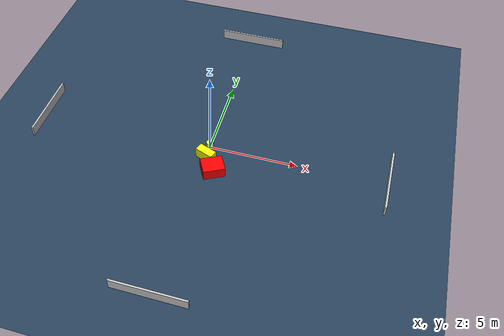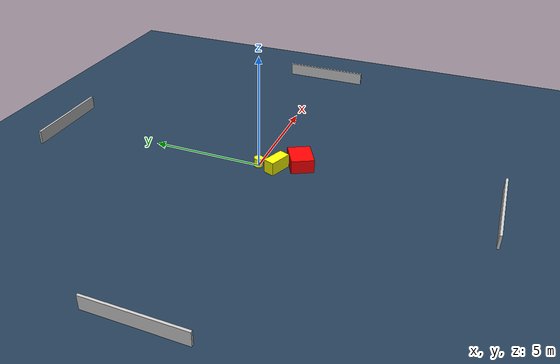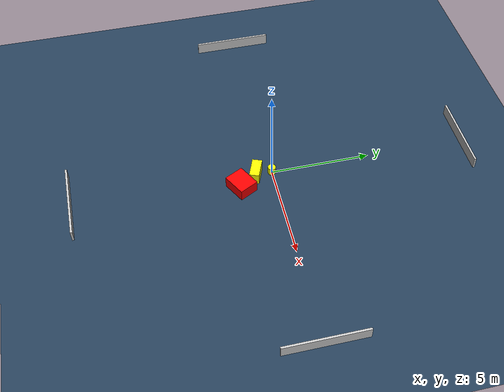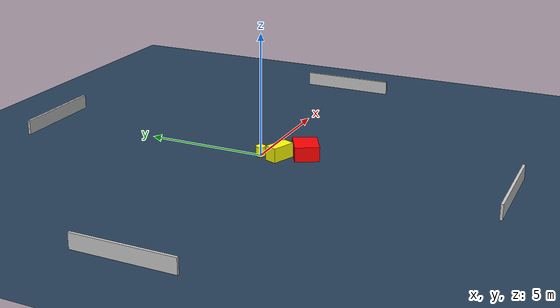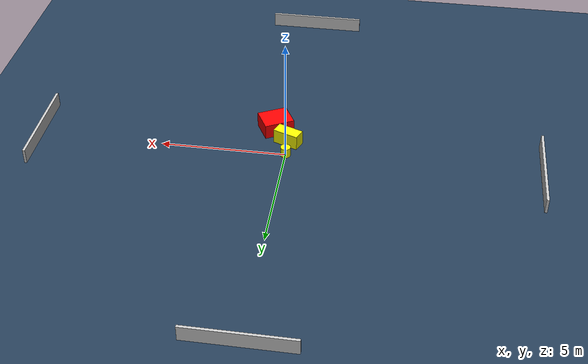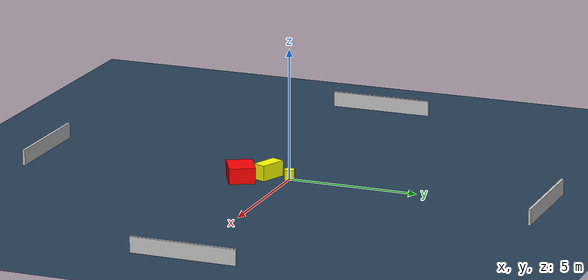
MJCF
<?xml version="1.0" ?>
<mujoco model="generated_environment">
  <option timestep="0.01" integrator="RK4" cone="elliptic"/>
  <default>
    <geom density="1"/>
  </default>
  <asset>
    <texture builtin="gradient" height="3072" name="skybox" rgb1="0.3 0.5 0.7" rgb2="0 0 0" type="skybox" width="512"/>
    <texture builtin="checker" height="300" name="groundplane" rgb1="0.2 0.3 0.4" rgb2="0.1 0.2 0.3" type="2d" width="300"/>
    <material name="groundplane" reflectance="0.2" texrepeat="5 5" texture="groundplane"/>
  </asset>
  <worldbody>
    <light dir="0 0 -1" directional="true" pos="0 0 1.5"/>
    <geom condim="3" friction="0.5 0.005 0.001" material="groundplane" name="floor" pos="0 0 0" size="0 0 0.05" type="plane"/>
    <body name="walls">
      <geom name="wall_1" condim="4" pos="-10.0 0.0 0.3" rgba="0.800000011920929 0.800000011920929 0.800000011920929 1.0" size="0.05 2.0 0.3" type="box"/>
      <geom name="wall_2" condim="4" pos="10.0 0.0 0.3" rgba="0.800000011920929 0.800000011920929 0.800000011920929 1.0" size="0.05 2.0 0.3" type="box"/>
      <geom name="wall_3" condim="4" pos="0.0 -10.0 0.3" rgba="0.800000011920929 0.800000011920929 0.800000011920929 1.0" size="2.0 0.05 0.3" type="box"/>
      <geom name="wall_4" condim="4" pos="0.0 10.0 0.3" rgba="0.800000011920929 0.800000011920929 0.800000011920929 1.0" size="2.0 0.05 0.3" type="box"/>
    </body>
    <body name="robot">
      <joint name="joint_x" type="slide" pos="0 0 0" axis="1 0 0"/>
      <joint name="joint_y" type="slide" pos="0 0 0" axis="0 1 0"/>
      <geom name="robot" type="cylinder" pos="0.0 0.0 0.2" size="0.2 0.2 0.0" mass="5.0" friction="1.0 0.005 0.0001" condim="4" rgba="1.0 1.0 0.0 1.0"/>
    </body>
    <body name="obstacle_1_movable">
      <geom name="obstacle_1_movable" condim="4" pos="0.018317238566489435 -0.8251728795383529 0.3" euler="0 0 338.6341228573487" friction="0.0 0.005 0.001" rgba="1.0 1.0 0.0 1.0" size="0.5204142116057913 0.2474193014808963 0.3" type="box" mass="0.1"/>
      <joint type="free"/>
    </body>
    <body name="obstacle_2_static">
      <geom name="obstacle_2_static" condim="4" pos="0.6558091032778868 -1.6855279490313886 0.3" euler="0 0 297.94097499498895" friction="0.0 0.005 0.001" rgba="1.0 0.0 0.0 1.0" size="0.4989007740388218 0.608179821651236 0.3" type="box"/>
    </body>
  </worldbody>
  <actuator>
    <motor name="actuator_x" joint="joint_x" gear="1" ctrlrange="-1 1"/>
    <motor name="actuator_y" joint="joint_y" gear="1" ctrlrange="-1 1"/>
  </actuator>
</mujoco>
